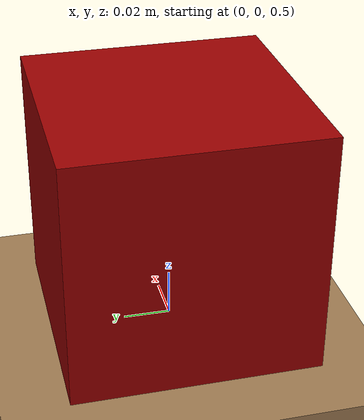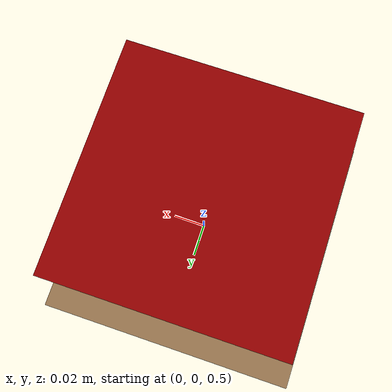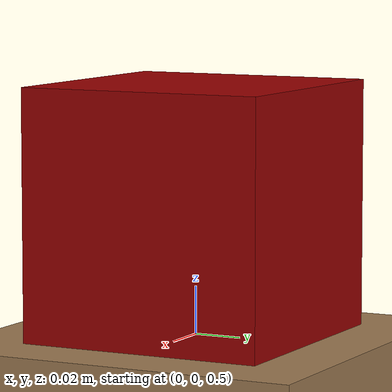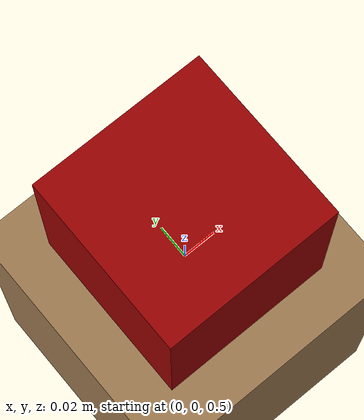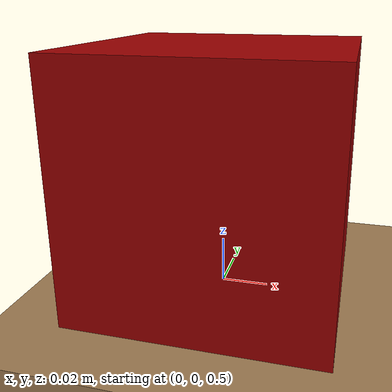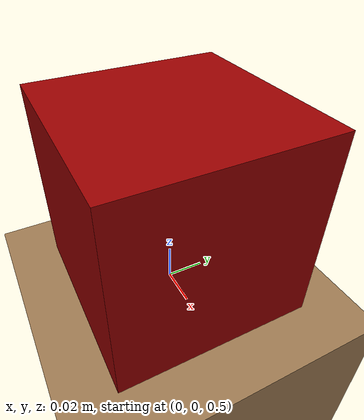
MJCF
<mujoco model="ladder0_rung18_mujoco">

  <!-- Only gravity and the timestep are set from the contract.  Everything
       else is MuJoCo's default, on purpose: this arm is the un-tuned
       reference for the solver OmniSim runs underneath. -->
  <option timestep="0.0005" gravity="0 0 -9.81" cone="elliptic" impratio="10"/>

  <default>
    <!-- sliding / torsional / rolling.  condim defaults to 3, so only the
         first component is in force; the rest are declared for the record. -->
    <geom friction="0.15 0.005 0.0001"/>
  </default>

  <worldbody>
    <geom name="table" type="box" size="2.0 2.0 0.1" pos="0 0 0.4"
          rgba="0.62 0.48 0.32 1"/>

    <body name="cube" pos="0 0 0.5524">
      <inertial pos="0 0 0" mass="0.37" diaginertia="0.00081 0.00081 0.00081"/>
      <freejoint name="cube_free"/>
      <geom name="cube_geom" type="box" size="0.0524 0.0524 0.0524"
            rgba="0.6 0.0 0.0 1"/>
    </body>
  </worldbody>

</mujoco>
